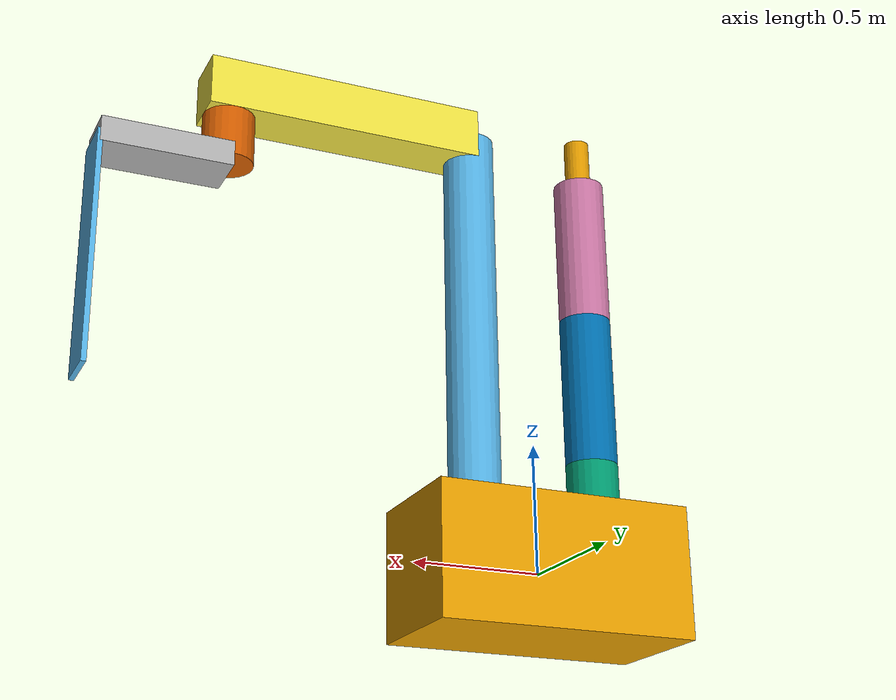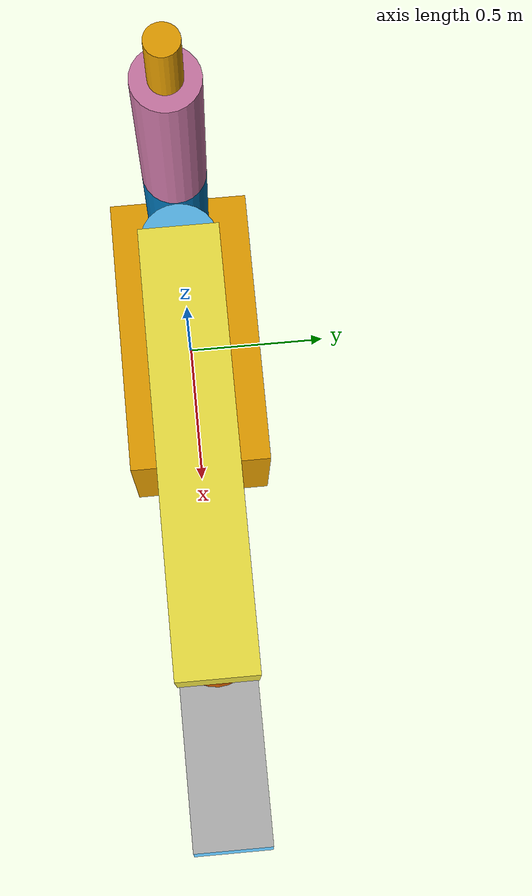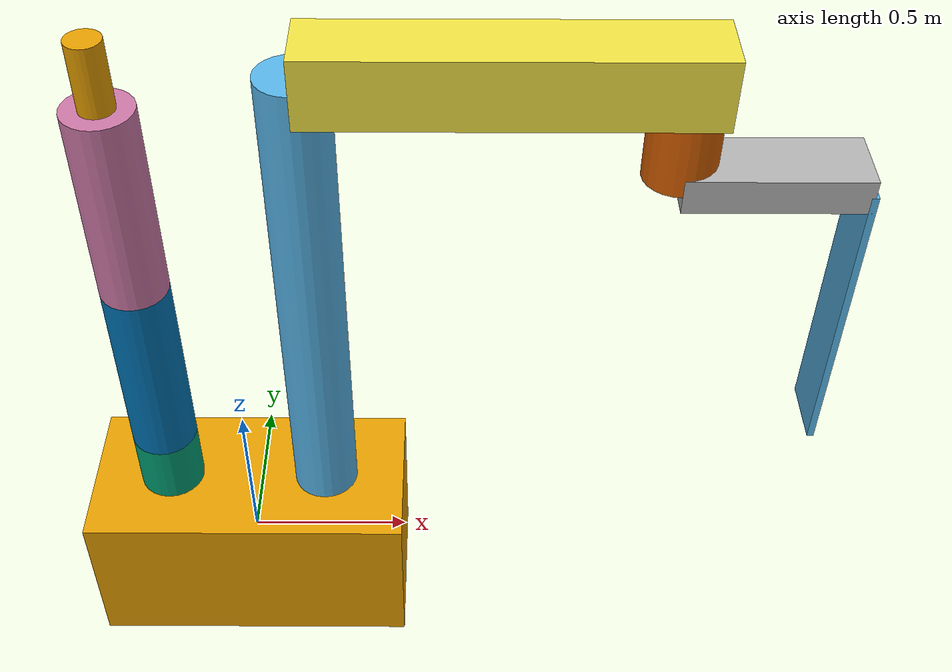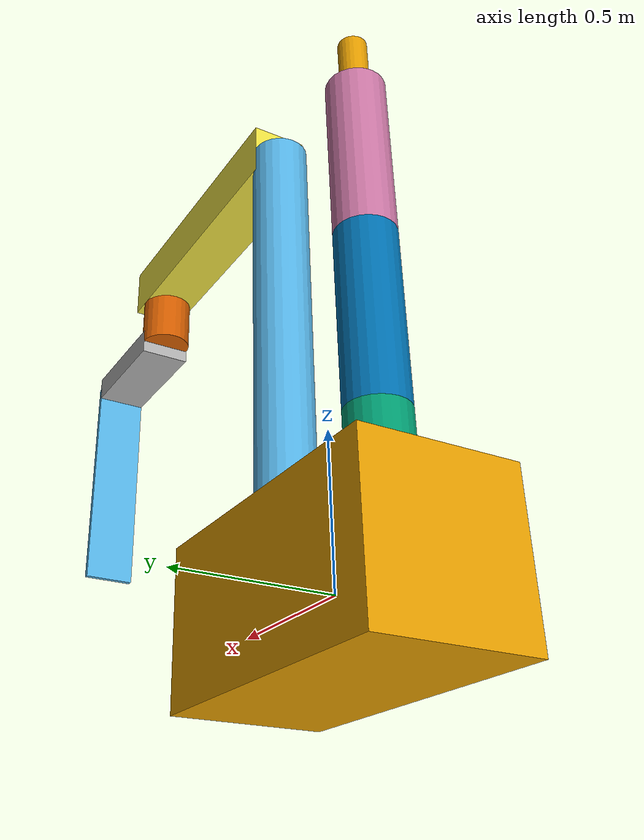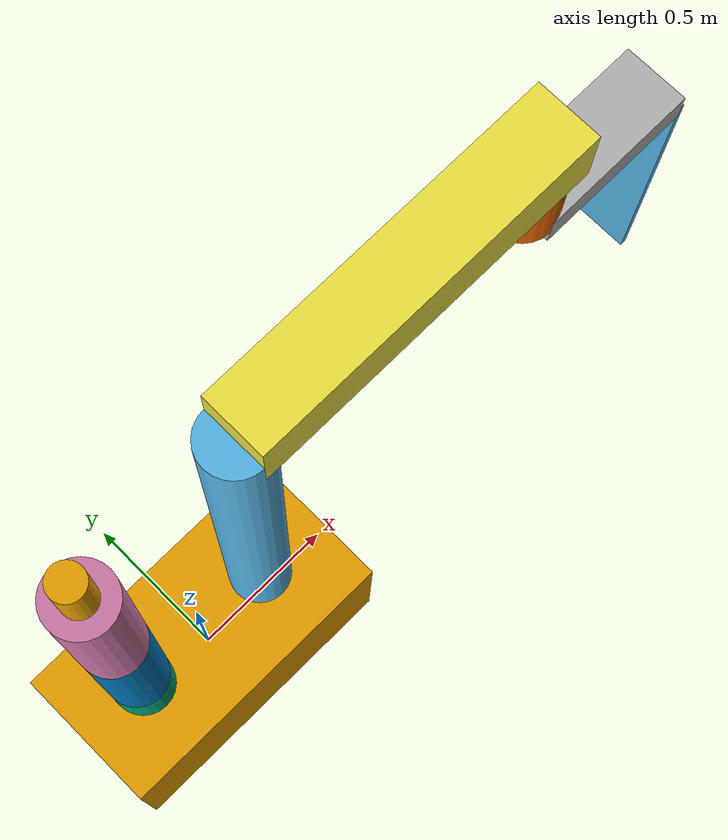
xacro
<?xml version="1.0" ?>

<robot name="mrm" xmlns:xacro="http://www.ros.org/wiki/xacro">

    <link name="base_link">
        <inertial>
            <mass value="50" />
            <origin rpy="0 0 0" xyz="0 0 0" />
            <inertia ixx="0.01" ixy="0.01" ixz="0.01" iyy="0.0" iyz="0.0" izz="0.0" />
        </inertial>
        <collision>
            <origin rpy="0 0 0" xyz="0 0 0" />
            <geometry>
                <box size="1 0.5 0.5" />
            </geometry>
        </collision>
        <visual>
            <origin rpy="0 0 0" xyz="0 0 0"/>
            <geometry>
                <box size="1 0.5 0.5"/>
            </geometry>
        </visual>
    </link>

    <joint name="base_link__link_1" type="revolute">
        <axis xyz="0 0 1" />
        <limit effort="1000.0" lower="-1.6" upper="1.6" velocity="0.5" />
        <origin rpy="0 0 0" xyz="0.25 0 0.25"/>
        <parent link="base_link"/>
        <child link="link_1"/>
    </joint>
    <transmission name="trans_base_link__link_1">
      <type>transmission_interface/SimpleTransmission</type>
      <joint name="base_link__link_1">
        <hardwareInterface>hardware_interface/EffortJointInterface</hardwareInterface>
      </joint>
      <actuator name="motor_base_link__link_1">
        <hardwareInterface>hardware_interface/EffortJointInterface</hardwareInterface>
        <mechanicalReduction>1</mechanicalReduction>
      </actuator>
    </transmission>

    <joint name="base_link__link_11" type="revolute">
        <axis xyz="0 0 1" />
        <limit effort="1000.0" lower="-2" upper="2" velocity="0.5" />
        <origin rpy="0 0 0" xyz="-0.25 0 0.25"/>
        <parent link="base_link"/>
        <child link="link_11"/>
    </joint>
    <transmission name="trans_base_link__link_11">
      <type>transmission_interface/SimpleTransmission</type>
      <joint name="base_link__link_11">
        <hardwareInterface>hardware_interface/EffortJointInterface</hardwareInterface>
      </joint>
      <actuator name="motor_base_link__link_11">
        <hardwareInterface>hardware_interface/EffortJointInterface</hardwareInterface>
        <mechanicalReduction>1</mechanicalReduction>
      </actuator>
    </transmission>

     <link name="link_1">
        <inertial>
            <mass value="5" />
            <origin rpy="0 0 0" xyz="0 0 0.75" />
            <inertia ixx="0.01" ixy="0.01" ixz="0.01" iyy="0.0" iyz="0.0" izz="0.0" />
        </inertial>
        <collision>
            <origin rpy="0 0 0" xyz="0 0 0.75" />
            <geometry>
                <cylinder radius="0.1" length="1.5" />
            </geometry>
        </collision>
        <visual>
            <origin rpy="0 0 0" xyz="0 0 0.75"/>
            <geometry>
                <cylinder radius="0.1" length="1.5"/>
            </geometry>
        </visual>
    </link>

    <link name="link_11">
        <inertial>
            <mass value="5" />
            <origin rpy="0 0 0" xyz="0 0 0.1" />
            <inertia ixx="0.01" ixy="0.01" ixz="0.01" iyy="0.0" iyz="0.0" izz="0.0" />
        </inertial>
        <collision>
            <origin rpy="0 0 0" xyz="0 0 0.1" />
            <geometry>
                <cylinder radius="0.1" length="0.2" />
            </geometry>
        </collision>
        <visual>
            <origin rpy="0 0 0" xyz="0 0 0.1"/>
            <geometry>
                <cylinder radius="0.1" length="0.2"/>
            </geometry>
        </visual>
    </link>

    <joint name="link_1__link_2" type="revolute">
        <axis xyz="0 1 0" />
        <limit effort="1000.0" lower="-0" upper="0" velocity="0.5" />
        <origin rpy="0 0 0" xyz="0 0 1.5"/>
        <parent link="link_1"/>
        <child link="link_2"/>
    </joint>

    <joint name="link_11__link_22" type="revolute">
        <axis xyz="0 1 0" />
        <limit effort="1000.0" lower="-1.5" upper="0" velocity="0.5" />
        <origin rpy="0 0 0" xyz="0 0 0.2"/>
        <parent link="link_11"/>
        <child link="link_22"/>
    </joint>
    <transmission name="trans_link_11__link_22">
      <type>transmission_interface/SimpleTransmission</type>
      <joint name="link_11__link_22">
        <hardwareInterface>hardware_interface/EffortJointInterface</hardwareInterface>
      </joint>
      <actuator name="motor_link_11__link_22">
        <hardwareInterface>hardware_interface/EffortJointInterface</hardwareInterface>
        <mechanicalReduction>1</mechanicalReduction>
      </actuator>
    </transmission>

    <link name="link_2">
        <inertial>
            <mass value="5" />
            <origin rpy="0 0 0" xyz="0.55 0 0" />
            <inertia ixx="0.01" ixy="0.01" ixz="0.01" iyy="0.0" iyz="0.0" izz="0.0" />
        </inertial>
        <collision>
            <origin rpy="0 0 0" xyz="0.55 0 0" />
            <geometry>
                <box size="1.1 0.2 0.2" />
            </geometry>
        </collision>
        <visual>
            <origin rpy="0 0 0" xyz="0.55 0 0"/>
            <geometry>
                <box size="1.1 0.2 0.2"/>
            </geometry>
        </visual>
    </link>

    <link name="link_22">
        <inertial>
            <mass value="5" />
            <origin rpy="0 0 0" xyz="0 0 0.3" />
            <inertia ixx="0.01" ixy="0.01" ixz="0.01" iyy="0.0" iyz="0.0" izz="0.0" />
        </inertial>
        <collision>
            <origin rpy="0 0 0" xyz="0 0 0.3" />
            <geometry>
                <cylinder radius="0.1" length="0.6" />
            </geometry>
        </collision>
        <visual>
            <origin rpy="0 0 0" xyz="0 0 0.3"/>
            <geometry>
                <cylinder radius="0.1" length="0.6"/>
            </geometry>
        </visual>
    </link>

    <joint name="link_2__link_3" type="revolute">
        <axis xyz="0 0 1" />
        <limit effort="1000.0" lower="-3.14" upper="3.14" velocity="0.5" />
        <origin rpy="0 0 0" xyz="1 0 -0.1"/>
        <parent link="link_2"/>
        <child link="link_3"/>
    </joint>
    <transmission name="trans_link_2__link_3">
      <type>transmission_interface/SimpleTransmission</type>
      <joint name="link_2__link_3">
        <hardwareInterface>hardware_interface/EffortJointInterface</hardwareInterface>
      </joint>
      <actuator name="motor_link_2__link_3">
        <hardwareInterface>hardware_interface/EffortJointInterface</hardwareInterface>
        <mechanicalReduction>1</mechanicalReduction>
      </actuator>
    </transmission>

    <joint name="link_22__link_33" type="revolute">
        <axis xyz="0 1 0" />
        <limit effort="1000.0" lower="-1.5" upper="0" velocity="0.5" />
        <origin rpy="0 0 0" xyz="0 0 0.6"/>
        <parent link="link_22"/>
        <child link="link_33"/>
    </joint>
    <transmission name="trans_link_22__link_33">
      <type>transmission_interface/SimpleTransmission</type>
      <joint name="link_22__link_33">
        <hardwareInterface>hardware_interface/EffortJointInterface</hardwareInterface>
      </joint>
      <actuator name="motor_link_22__link_33">
        <hardwareInterface>hardware_interface/EffortJointInterface</hardwareInterface>
        <mechanicalReduction>1</mechanicalReduction>
      </actuator>
    </transmission>

    <link name="link_3">
        <inertial>
            <mass value="5" />
            <origin rpy="0 0 0" xyz="0 0 -0.1" />
            <inertia ixx="0.01" ixy="0.01" ixz="0.01" iyy="0.0" iyz="0.0" izz="0.0" />
        </inertial>
        <collision>
            <origin rpy="0 0 0" xyz="0 0 -0.1" />
            <geometry>
                <cylinder radius="0.1" length="0.2" />
            </geometry>
        </collision>
        <visual>
            <origin rpy="0 0 0" xyz="0 0 -0.1"/>
            <geometry>
                <cylinder radius="0.1" length="0.2"/>
            </geometry>
        </visual>
    </link>

    <link name="link_33">
        <inertial>
            <mass value="5" />
            <origin rpy="0 0 0" xyz="0 0 0.3" />
            <inertia ixx="0.01" ixy="0.01" ixz="0.01" iyy="0.0" iyz="0.0" izz="0.0" />
        </inertial>
        <collision>
            <origin rpy="0 0 0" xyz="0 0 0.3" />
            <geometry>
                <cylinder radius="0.1" length="0.6" />
            </geometry>
        </collision>
        <visual>
            <origin rpy="0 0 0" xyz="0 0 0.3"/>
            <geometry>
                <cylinder radius="0.1" length="0.6"/>
            </geometry>
        </visual>
    </link>

    <joint name="link_3__link_4" type="revolute">
        <axis xyz="0 0 1" />
        <limit effort="1000.0" lower="-0" upper="0" velocity="0.5" />
        <origin rpy="0 0 0" xyz="0 0 -0.2"/>
        <parent link="link_3"/>
        <child link="link_4"/>
    </joint>
    <transmission name="trans_link_3__link_4">
      <type>transmission_interface/SimpleTransmission</type>
      <joint name="link_3__link_4">
        <hardwareInterface>hardware_interface/EffortJointInterface</hardwareInterface>
      </joint>
      <actuator name="motor_link_3__link_4">
        <hardwareInterface>hardware_interface/EffortJointInterface</hardwareInterface>
        <mechanicalReduction>1</mechanicalReduction>
      </actuator>
    </transmission>

    <joint name="link_33__link_44" type="revolute">
        <axis xyz="0 1 0" />
        <limit effort="1000.0" lower="-1.5" upper="0" velocity="0.5" />
        <origin rpy="0 0 0" xyz="0 0 0.6"/>
        <parent link="link_33"/>
        <child link="link_44"/>
    </joint>
    <transmission name="trans_link_33__link_44">
      <type>transmission_interface/SimpleTransmission</type>
      <joint name="link_33__link_44">
        <hardwareInterface>hardware_interface/EffortJointInterface</hardwareInterface>
      </joint>
      <actuator name="motor_link_33__link_44">
        <hardwareInterface>hardware_interface/EffortJointInterface</hardwareInterface>
        <mechanicalReduction>1</mechanicalReduction>
      </actuator>
    </transmission>

    <link name="link_4">
        <inertial>
            <mass value="5" />
            <origin rpy="0 0 0" xyz="0.25 0 0" />
            <inertia ixx="0.01" ixy="0.01" ixz="0.01" iyy="0.0" iyz="0.0" izz="0.0" />
        </inertial>
        <collision>
            <origin rpy="0 0 0" xyz="0.25 0 0" />
            <geometry>
                <box size="0.5 0.2 0.1" />
            </geometry>
        </collision>
        <visual>
            <origin rpy="0 0 0" xyz="0.25 0 0"/>
            <geometry>
                <box size="0.5 0.2 0.1"/>
            </geometry>
        </visual>
    </link>

    <link name="link_44">
        <inertial>
            <mass value="5" />
            <origin rpy="0 0 0" xyz="0 0 0.1" />
            <inertia ixx="0.01" ixy="0.01" ixz="0.01" iyy="0.0" iyz="0.0" izz="0.0" />
        </inertial>
        <collision>
            <origin rpy="0 0 0" xyz="0 0 0.1" />
            <geometry>
                <cylinder radius="0.05" length="0.2" />
            </geometry>
        </collision>
        <visual>
            <origin rpy="0 0 0" xyz="0 0 0.1"/>
            <geometry>
                <cylinder radius="0.05" length="0.2"/>
            </geometry>
        </visual>
    </link>

    <joint name="link_4__link_5" type="revolute">
        <axis xyz="0 0 1" />
        <limit effort="1000.0" lower="-0" upper="0" velocity="0.5" />
        <origin rpy="0 0 0" xyz="0.5 0 0"/>
        <parent link="link_4"/>
        <child link="link_5"/>
    </joint>

    <link name="link_5">
        <inertial>
            <mass value="5" />
            <origin rpy="0 0 0" xyz="0 0 -0.45" />
            <inertia ixx="0.01" ixy="0.01" ixz="0.01" iyy="0.0" iyz="0.0" izz="0.0" />
        </inertial>
        <collision>
            <origin rpy="0 0 0" xyz="0 0 -0.45" />
            <geometry>
                <box size="0.02 0.2 0.9" />
            </geometry>
        </collision>
        <visual>
            <origin rpy="0 0 0" xyz="0 0 -0.45"/>
            <geometry>
                <box size="0.02 0.2 0.9"/>
            </geometry>
        </visual>
    </link>

    <gazebo>
        <plugin name="gazebo_ros_control" filename="libgazebo_ros_control.so">
        </plugin>
    </gazebo>

</robot>
